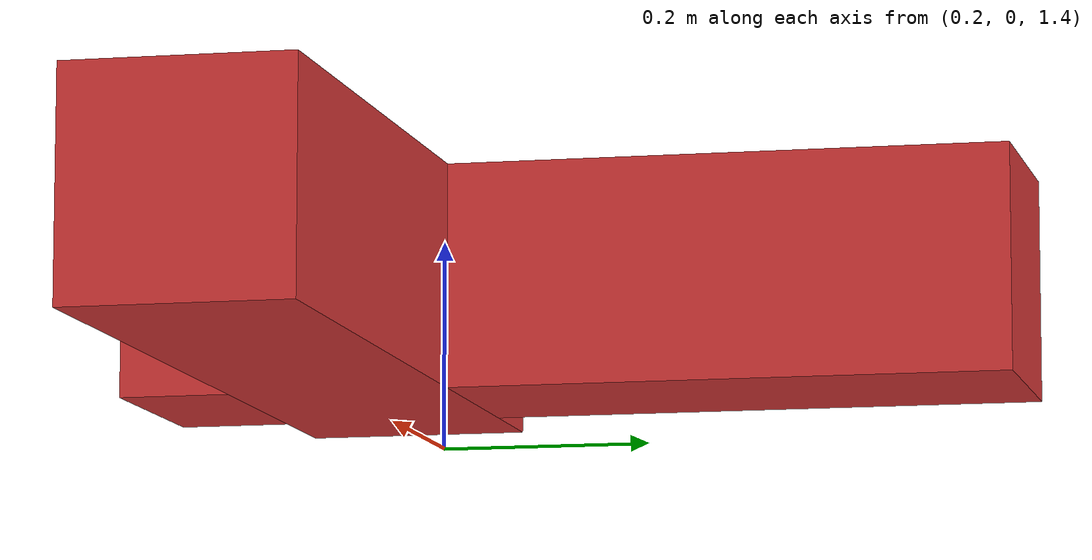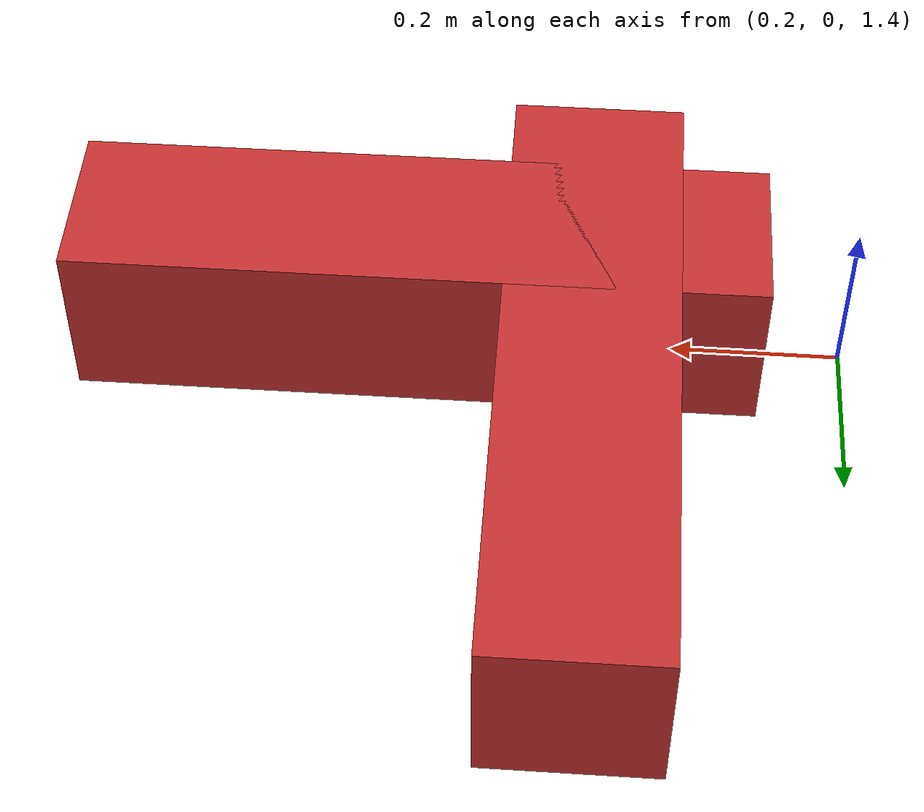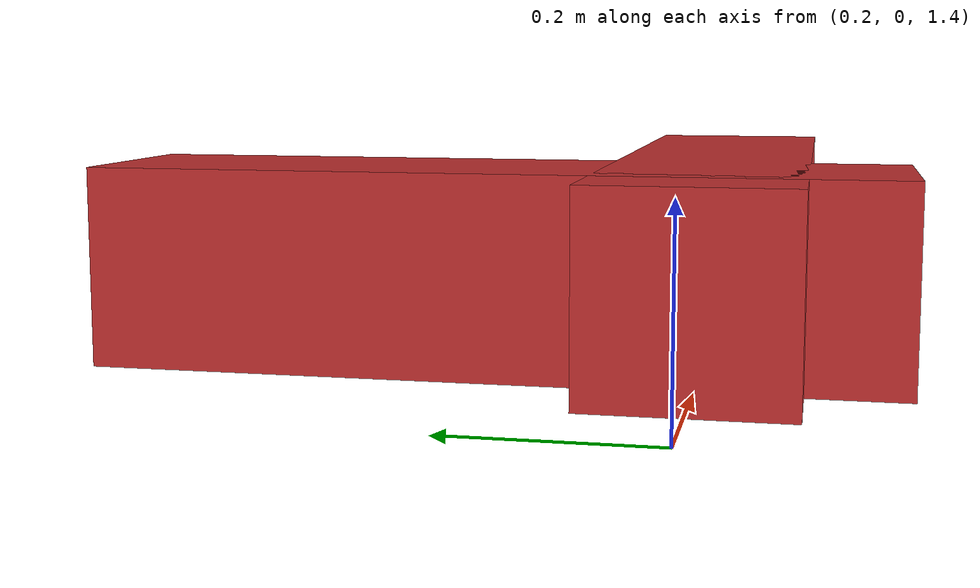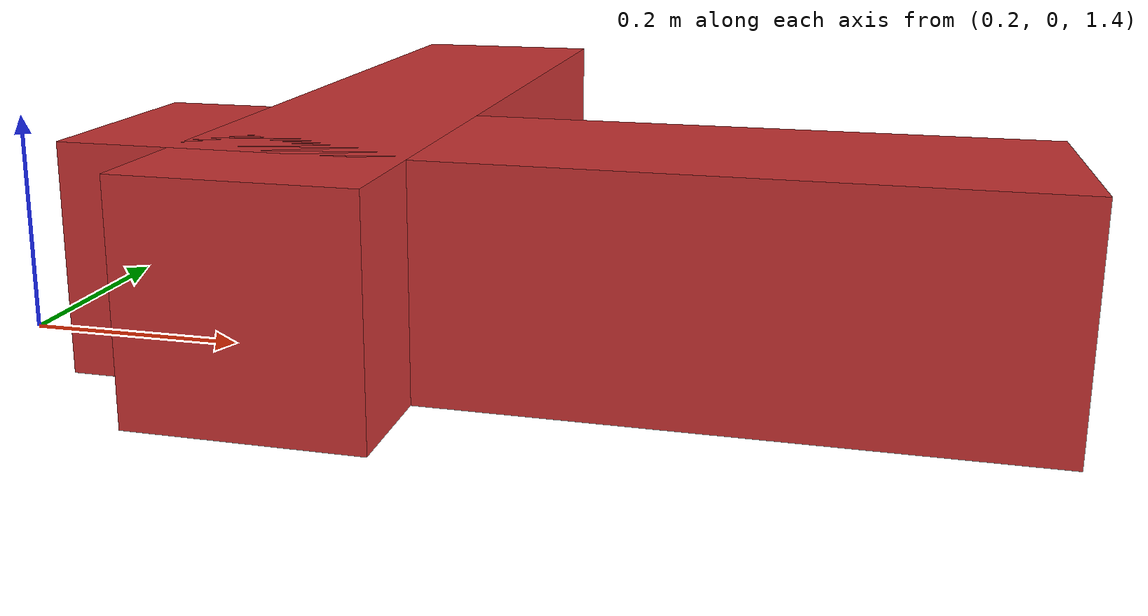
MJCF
<mujoco>
  <option gravity="0 0 -9.81" />
  <worldbody>
    <body name="object_2" pos="0 0 2" />
    <body name="object_3" pos="1 0 2" />
    <body name="object_1" pos="0.5 0 1.5">
      <geom type="box" size="0.1 0.4 0.1" pos="0 0.2 0" density="1" rgba="0.8 0.2 0.2 1" />
      <geom type="box" size="0.4 0.1 0.1" pos="0.2 0 0" density="1" rgba="0.8 0.2 0.2 1" />
      <joint type="ball" name="object_1_joint" limited="false" />
    </body>
  </worldbody>
</mujoco>
